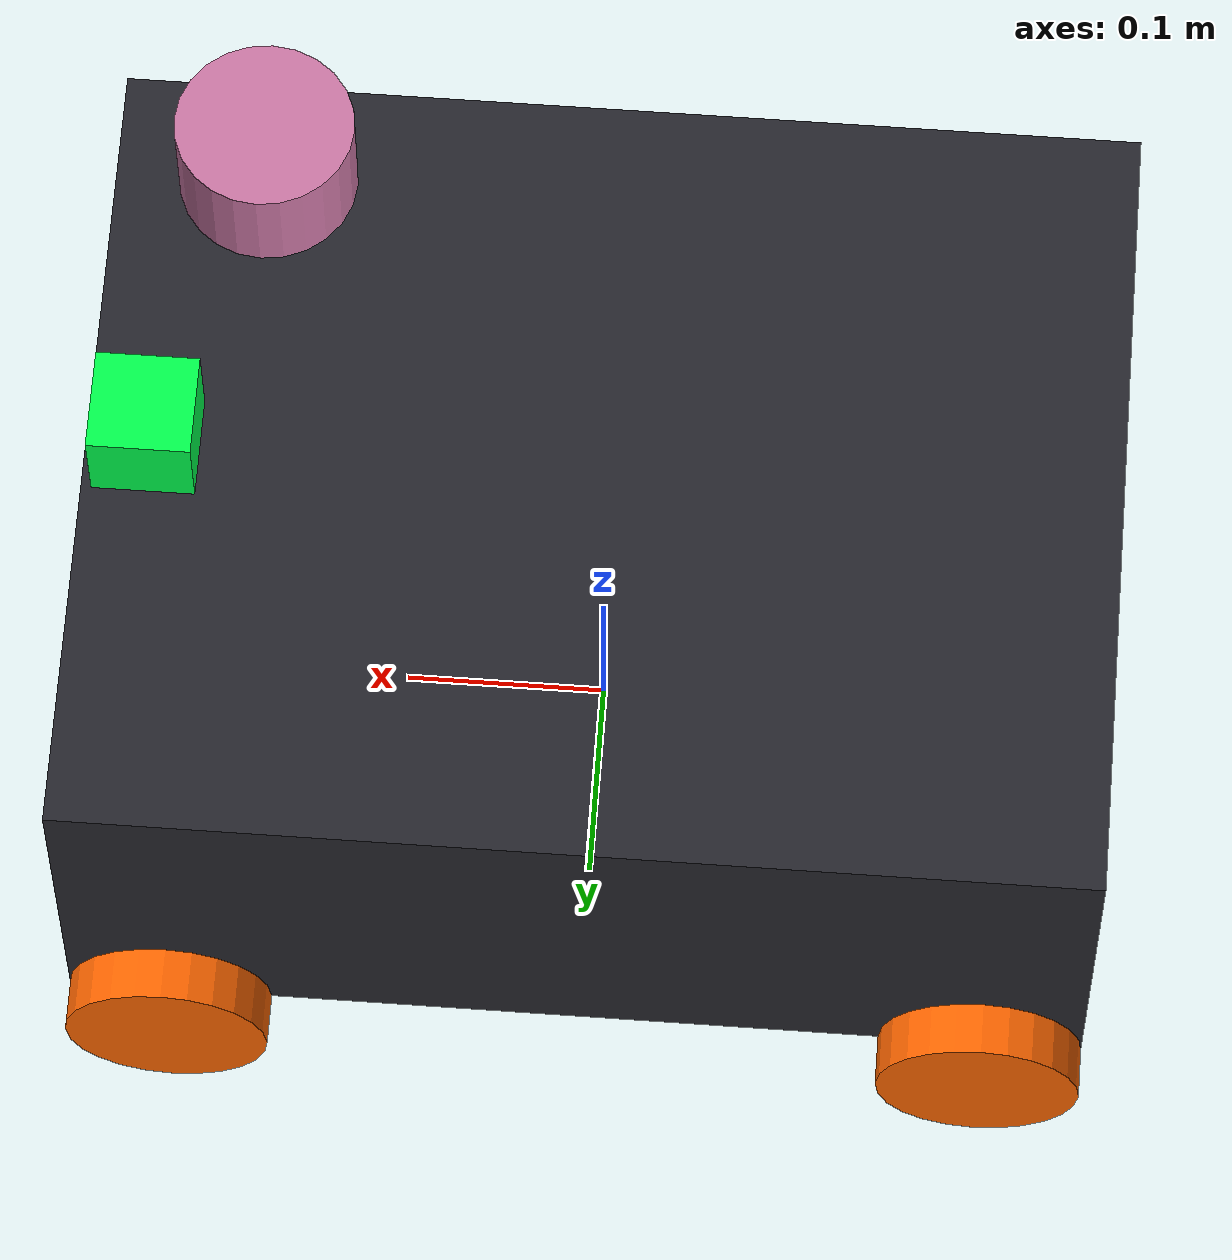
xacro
<?xml version="1.0"?>
<robot name="igvc_bot" xmlns:xacro="http://www.ros.org/wiki/xacro">

  <!-- ================= INCLUDES ================= -->
  <xacro:include filename="$(find igvc_description)/urdf/base.xacro"/>
  <xacro:include filename="$(find igvc_description)/urdf/wheels.xacro"/>
  <xacro:include filename="$(find igvc_description)/urdf/sensors.xacro"/>
  <xacro:include filename="$(find igvc_description)/urdf/gazebo_plugins.xacro"/>

  <!-- ================= BUILD ROBOT ================= -->
  <xacro:base/>
  <xacro:wheels/>
  <xacro:sensors/>
  <xacro:gazebo_plugins/>

  <!-- ================= GAZEBO DIFF DRIVE ================= -->
<gazebo>
  <plugin
    filename="libgz-sim-diff-drive-system.so"
    name="gz::sim::systems::DiffDrive">

    <topic>/cmd_vel</topic>
    <odom_topic>/odom</odom_topic>

    <odom_frame>odom</odom_frame>
    <base_frame>base_link</base_frame>

    <publish_tf>true</publish_tf>

    <left_joint>wheel_fl_joint</left_joint>
    <left_joint>wheel_rl_joint</left_joint>

    <right_joint>wheel_fr_joint</right_joint>
    <right_joint>wheel_rr_joint</right_joint>

    <wheel_separation>0.36</wheel_separation>
    <wheel_radius>0.05</wheel_radius>
    <update_rate>100</update_rate>

  </plugin>
</gazebo>

</robot>

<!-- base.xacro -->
<robot xmlns:xacro="http://www.ros.org/wiki/xacro">

<xacro:macro name="base">

<link name="base_link">

<visual>
  <geometry>
    <box size="0.5 0.4 0.2"/>
  </geometry>
  <origin xyz="0 0 0.15"/>
  <material name="body_color">
    <color rgba="0.15 0.15 0.18 1"/>
  </material>
</visual>

<collision>
  <geometry>
    <box size="0.5 0.4 0.2"/>
  </geometry>
  <origin xyz="0 0 0.15"/>
</collision>

<inertial>
  <mass value="10.0"/>
  <origin xyz="0 0 0.15"/>
  <inertia ixx="0.2" iyy="0.2" izz="0.2"
           ixy="0" ixz="0" iyz="0"/>
</inertial>

</link>

</xacro:macro>

</robot>

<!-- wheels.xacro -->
<robot xmlns:xacro="http://www.ros.org/wiki/xacro">

<xacro:macro name="wheels">

  <xacro:property name="wheel_radius" value="0.05"/>
  <xacro:property name="wheel_width" value="0.03"/>
  <xacro:property name="wheel_mass" value="1.0"/>

  <xacro:macro name="make_wheel" params="name x y">

    <link name="${name}_link">
      <visual>
        <origin rpy="1.5708 0 0"/>
        <geometry>
          <cylinder radius="${wheel_radius}" length="${wheel_width}"/>
        </geometry>
        <material name="wheel_orange">
          <color rgba="1.0 0.4 0.0 1"/>
        </material>
      </visual>

      <collision>
        <origin rpy="1.5708 0 0"/>
        <geometry>
          <cylinder radius="${wheel_radius}" length="${wheel_width}"/>
        </geometry>
      </collision>

      <inertial>
        <mass value="${wheel_mass}"/>
        <origin xyz="0 0 0"/>
        <inertia ixx="0.01" iyy="0.01" izz="0.005"
                 ixy="0.0" ixz="0.0" iyz="0.0"/>
      </inertial>
    </link>

    <joint name="${name}_joint" type="continuous">
      <parent link="base_link"/>
      <child link="${name}_link"/>
      <!-- Wheel center at wheel_radius -->
      <origin xyz="${x} ${y} ${wheel_radius}"/>
      <axis xyz="0 1 0"/>
    </joint>

  </xacro:macro>

  <!-- Slightly outside body width -->
  <xacro:make_wheel name="wheel_fl" x="0.2"  y="0.21"/>
  <xacro:make_wheel name="wheel_fr" x="0.2"  y="-0.21"/>
  <xacro:make_wheel name="wheel_rl" x="-0.2" y="0.21"/>
  <xacro:make_wheel name="wheel_rr" x="-0.2" y="-0.21"/>

</xacro:macro>

</robot>

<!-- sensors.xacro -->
<robot xmlns:xacro="http://www.ros.org/wiki/xacro">

<xacro:macro name="sensors">

  <!-- ================= IMU ================= -->
  <link name="imu_link"/>

  <joint name="imu_joint" type="fixed">
    <parent link="base_link"/>
    <child link="imu_link"/>
    <origin xyz="0 0 0.30"/>
  </joint>

  <gazebo reference="imu_link">
    <sensor name="imu_sensor" type="imu">
      <always_on>true</always_on>
      <update_rate>100</update_rate>
      <topic>/imu</topic>
    </sensor>
  </gazebo>

  <!-- ================= LIDAR ================= -->
  <link name="lidar_link">

    <visual>
      <geometry>
        <cylinder radius="0.04" length="0.05"/>
      </geometry>
    </visual>

    <collision>
      <geometry>
        <cylinder radius="0.04" length="0.05"/>
      </geometry>
    </collision>

    <inertial>
      <mass value="0.1"/>
      <inertia ixx="0.0001" iyy="0.0001" izz="0.0001"
               ixy="0" ixz="0" iyz="0"/>
    </inertial>

  </link>

  <joint name="lidar_joint" type="fixed">
    <parent link="base_link"/>
    <child link="lidar_link"/>
    <origin xyz="0.15 0 0.55"/>
  </joint>

  <!-- ✅ Stable CPU Ray Lidar (No GPU Crash) -->
<gazebo reference="lidar_link">
  <sensor name="lidar" type="ray">
    <always_on>true</always_on>
    <update_rate>30</update_rate>
    <visualize>true</visualize>

    <topic>scan</topic>
    <frame_id>lidar_link</frame_id>

    <ray>
      <scan>
        <horizontal>
          <samples>360</samples>
          <resolution>1</resolution>
          <min_angle>-3.14159</min_angle>
          <max_angle>3.14159</max_angle>
        </horizontal>
      </scan>

      <range>
        <min>0.1</min>
        <max>10.0</max>
        <resolution>0.01</resolution>
      </range>
    </ray>

  </sensor>
</gazebo>

  <!-- ================= CAMERA (visual only) ================= -->
  <link name="camera_link">
    <visual>
      <geometry>
        <box size="0.05 0.05 0.05"/>
      </geometry>
      <material name="sensor_green">
        <color rgba="0.0 1.0 0.3 1"/>
      </material>
    </visual>
  </link>

  <joint name="camera_joint" type="fixed">
    <parent link="base_link"/>
    <child link="camera_link"/>
    <origin xyz="0.22 0 0.27"/>
  </joint>

</xacro:macro>

</robot>
